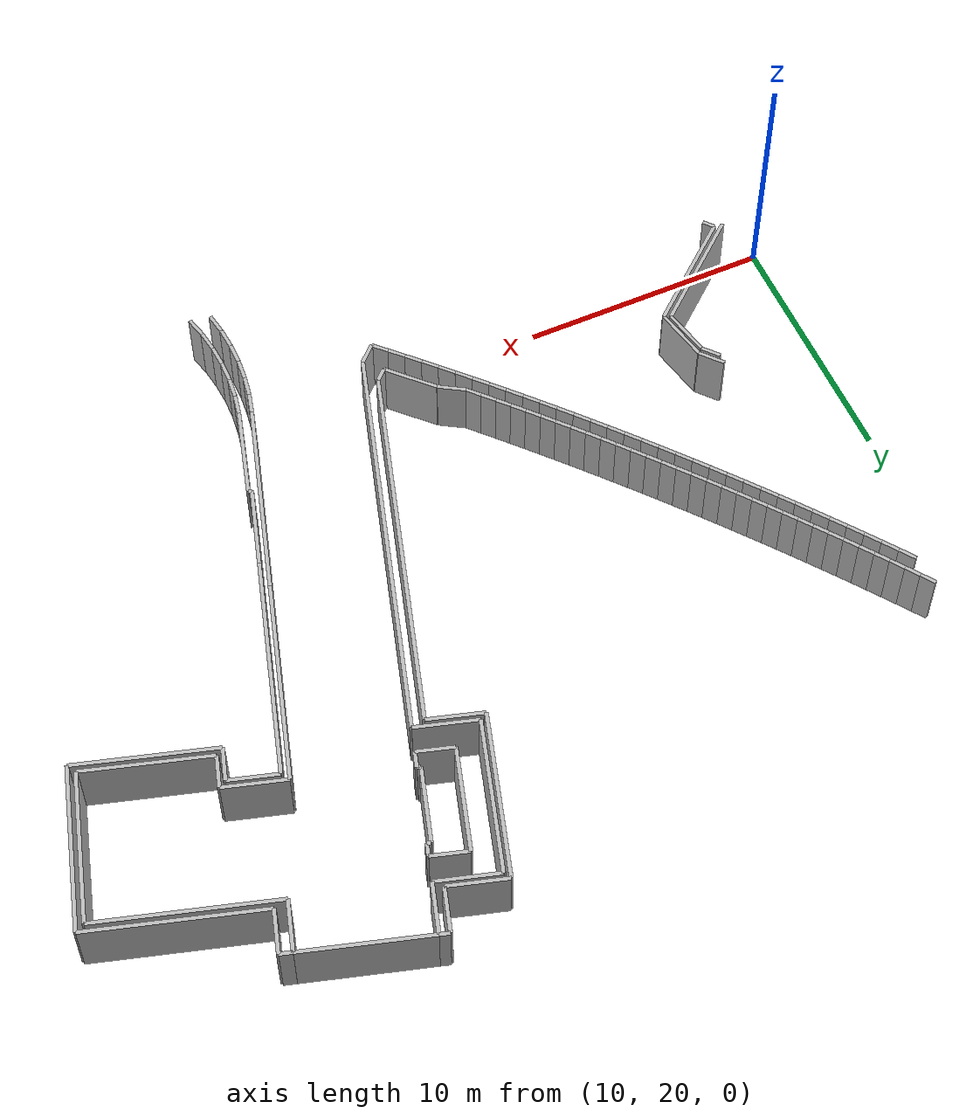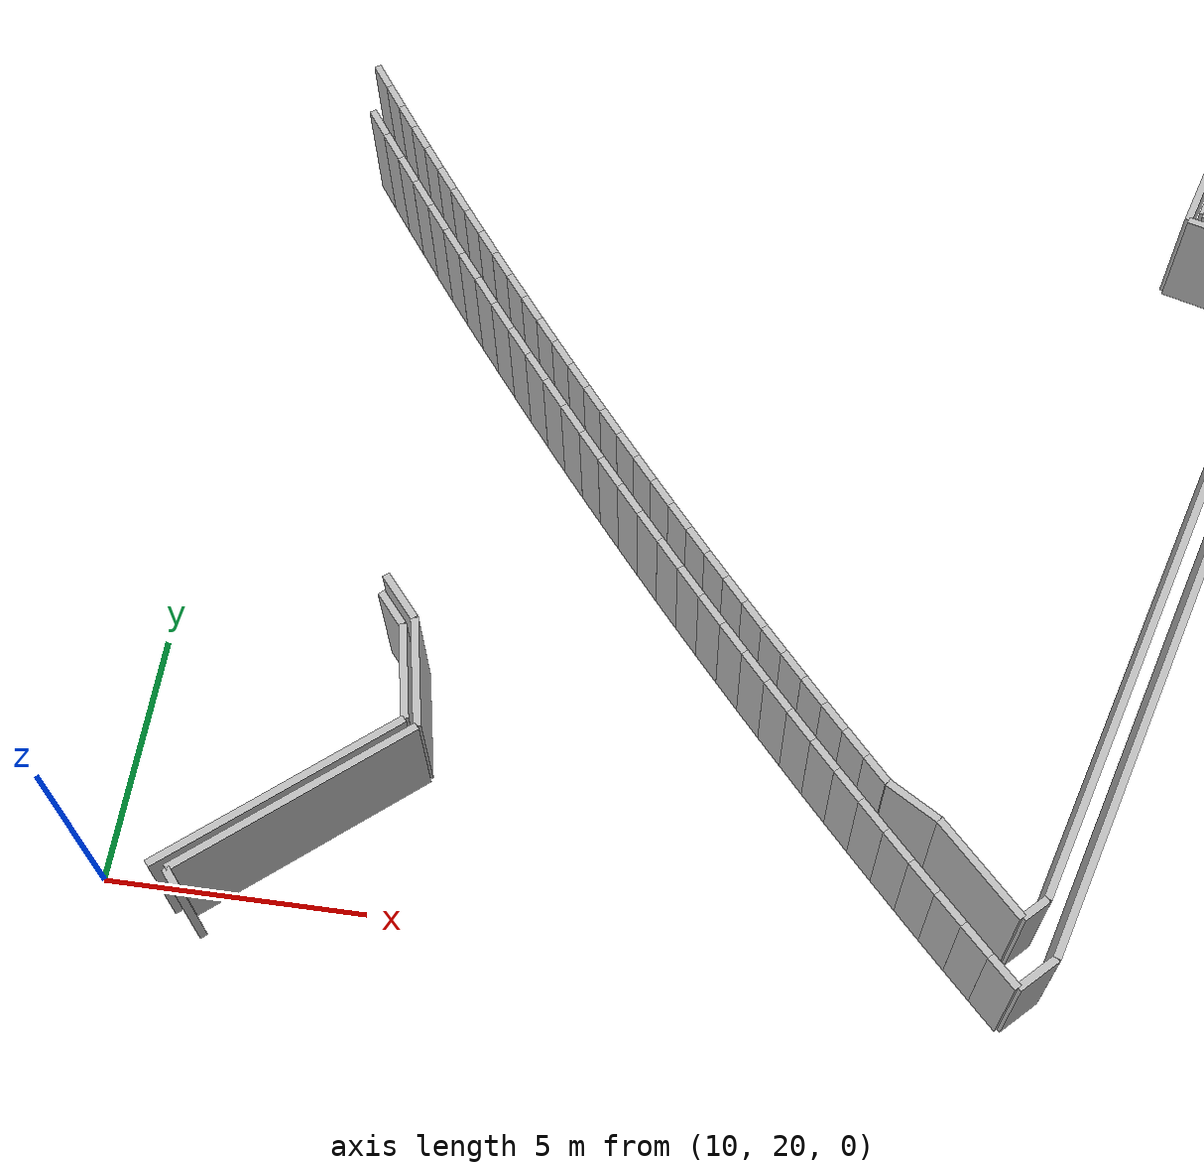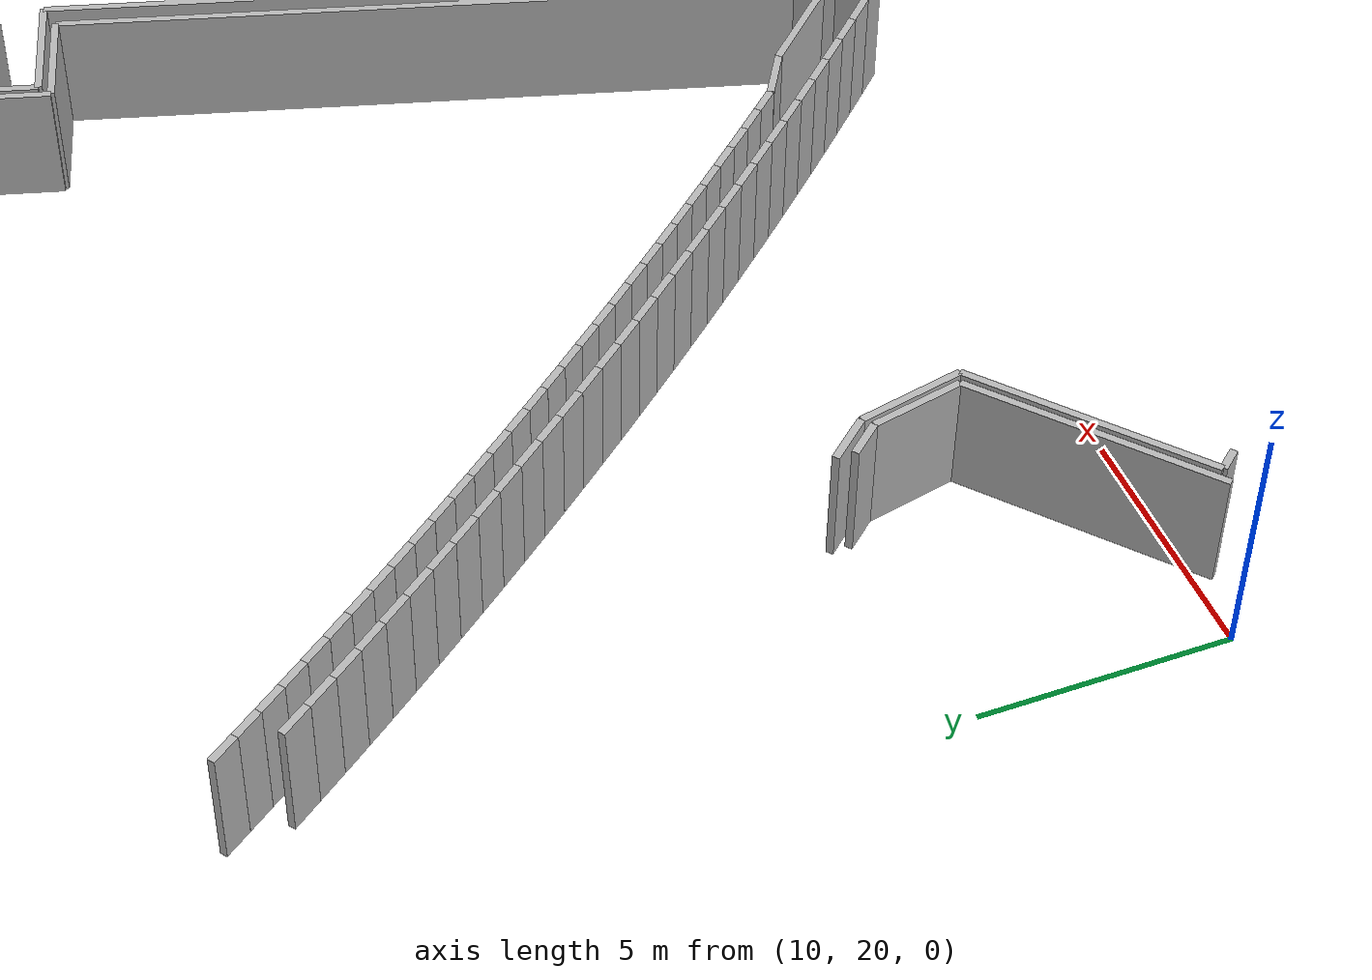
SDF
<sdf version="1.6">
 <model name="sps_0201">
  <static>1</static>
  <allow_auto_disable>0</allow_auto_disable>
  <link name="Wall39">
   <collision name="collision"><geometry><box><size>1.96757 0.15 2.5</size></box></geometry></collision>
   <visual name="visual">
    <geometry><box><size>1.96757 0.15 2.5</size></box></geometry>
    <transparency>0.0</transparency>
   </visual>
   <pose>37.9246 35.3446 1.25 0 -0 2.8548</pose>
  </link>
  <link name="Wall412">
   <collision name="collision"><geometry><box><size>1.07775 0.15 2.5</size></box></geometry></collision>
   <visual name="visual">
    <geometry><box><size>1.07775 0.15 2.5</size></box></geometry>
    <transparency>0.0</transparency>
   </visual>
   <pose>14.8383 25.4288 1.25 0 0 -0.857502</pose>
  </link>
  <link name="Wall417">
   <collision name="collision"><geometry><box><size>2.2506 0.15 2.5</size></box></geometry></collision>
   <visual name="visual">
    <geometry><box><size>2.2506 0.15 2.5</size></box></geometry>
    <transparency>0.0</transparency>
   </visual>
   <pose>25.9873 21.5341 1.25 0 -0 2.34037</pose>
  </link>
  <link name="Wall421">
   <collision name="collision"><geometry><box><size>0.887482 0.15 2.5</size></box></geometry></collision>
   <visual name="visual">
    <geometry><box><size>0.887482 0.15 2.5</size></box></geometry>
    <transparency>0.0</transparency>
   </visual>
   <pose>27.0769 19.7676 1.25 0 0 -2.36777</pose>
  </link>
  <link name="Wall422">
   <collision name="collision"><geometry><box><size>2.23408 0.15 2.5</size></box></geometry></collision>
   <visual name="visual">
    <geometry><box><size>2.23408 0.15 2.5</size></box></geometry>
    <transparency>0.0</transparency>
   </visual>
   <pose>30.4044 35.9931 1.25 0 -0 2.85478</pose>
  </link>
  <link name="Wall424">
   <collision name="collision"><geometry><box><size>2.3349 0.15 2.5</size></box></geometry></collision>
   <visual name="visual">
    <geometry><box><size>2.3349 0.15 2.5</size></box></geometry>
    <transparency>0.0</transparency>
   </visual>
   <pose>32.3158 42.2971 1.25 0 0 -0.286752</pose>
  </link>
  <link name="Wall1154">
   <collision name="collision"><geometry><box><size>0.799993 0.15 2.5</size></box></geometry></collision>
   <visual name="visual">
    <geometry><box><size>0.799993 0.15 2.5</size></box></geometry>
    <transparency>0.0</transparency>
   </visual>
   <pose>14.737 25.1576 1.25 0 0 -0.857536</pose>
  </link>
  <link name="Wall1155">
   <collision name="collision"><geometry><box><size>5.08007 0.15 2.5</size></box></geometry></collision>
   <visual name="visual">
    <geometry><box><size>5.08007 0.15 2.5</size></box></geometry>
    <transparency>0.0</transparency>
   </visual>
   <pose>13.7185 21.2074 1.25 0 -0 0.704525</pose>
  </link>
  <link name="Wall1168">
   <collision name="collision"><geometry><box><size>3.67564 0.15 2.5</size></box></geometry></collision>
   <visual name="visual">
    <geometry><box><size>3.67564 0.15 2.5</size></box></geometry>
    <transparency>0.0</transparency>
   </visual>
   <pose>33.1916 22.1685 1.25 0 -0 1.30074</pose>
  </link>
  <link name="Wall1169">
   <collision name="collision"><geometry><box><size>8.11879 0.15 2.5</size></box></geometry></collision>
   <visual name="visual">
    <geometry><box><size>8.11879 0.15 2.5</size></box></geometry>
    <transparency>0.0</transparency>
   </visual>
   <pose>35.6178 32.0543 1.25 0 0 -1.85759</pose>
  </link>
  <link name="Wall1170">
   <collision name="collision"><geometry><box><size>7.94618 0.15 2.5</size></box></geometry></collision>
   <visual name="visual">
    <geometry><box><size>7.94618 0.15 2.5</size></box></geometry>
    <transparency>0.0</transparency>
   </visual>
   <pose>33.3455 24.3499 1.25 0 0 -1.85759</pose>
  </link>
  <link name="Wall1171">
   <collision name="collision"><geometry><box><size>5.53406 0.15 2.5</size></box></geometry></collision>
   <visual name="visual">
    <geometry><box><size>5.53406 0.15 2.5</size></box></geometry>
    <transparency>0.0</transparency>
   </visual>
   <pose>41.1464 33.0091 1.25 0 -0 2.85477</pose>
  </link>
  <link name="Wall1484">
   <collision name="collision"><geometry><box><size>0.581381 0.15 2.5</size></box></geometry></collision>
   <visual name="visual">
    <geometry><box><size>0.581381 0.15 2.5</size></box></geometry>
    <transparency>0.0</transparency>
   </visual>
   <pose>26.9782 20.9291 1.25 0 0 -2.36763</pose>
  </link>
  <link name="Wall1486">
   <collision name="collision"><geometry><box><size>15.1642 0.15 2.5</size></box></geometry></collision>
   <visual name="visual">
    <geometry><box><size>15.1642 0.15 2.5</size></box></geometry>
    <transparency>0.0</transparency>
   </visual>
   <pose>29.331 28.4047 1.25 0 -0 1.28399</pose>
  </link>
  <link name="Wall1488">
   <collision name="collision"><geometry><box><size>1.32867 0.15 2.5</size></box></geometry></collision>
   <visual name="visual">
    <geometry><box><size>1.32867 0.15 2.5</size></box></geometry>
    <transparency>0.0</transparency>
   </visual>
   <pose>38.6804 34.4291 1.25 0 -0 1.28405</pose>
  </link>
  <link name="Wall1772">
   <collision name="collision"><geometry><box><size>1.93117 0.15 2.5</size></box></geometry></collision>
   <visual name="visual">
    <geometry><box><size>1.93117 0.15 2.5</size></box></geometry>
    <transparency>0.0</transparency>
   </visual>
   <pose>15.2003 23.9108 1.25 0 0 -1.36046</pose>
  </link>
  <link name="Wall1782">
   <collision name="collision"><geometry><box><size>6.58713 0.15 2.5</size></box></geometry></collision>
   <visual name="visual">
    <geometry><box><size>6.58713 0.15 2.5</size></box></geometry>
    <transparency>0.0</transparency>
   </visual>
   <pose>30.2645 39.4682 1.25 0 -0 1.28405</pose>
  </link>
  <link name="Wall1783">
   <collision name="collision"><geometry><box><size>1.76891 0.15 2.5</size></box></geometry></collision>
   <visual name="visual">
    <geometry><box><size>1.76891 0.15 2.5</size></box></geometry>
    <transparency>0.0</transparency>
   </visual>
   <pose>33.6859 42.8152 1.25 0 -0 1.28387</pose>
  </link>
  <link name="Wall1784">
   <collision name="collision"><geometry><box><size>0.397031 0.15 2.5</size></box></geometry></collision>
   <visual name="visual">
    <geometry><box><size>0.397031 0.15 2.5</size></box></geometry>
    <transparency>0.0</transparency>
   </visual>
   <pose>34.1266 43.6073 1.25 0 0 -0.286936</pose>
  </link>
  <link name="Wall2105">
   <collision name="collision"><geometry><box><size>0.502067 0.15 2.5</size></box></geometry></collision>
   <visual name="visual">
    <geometry><box><size>0.502067 0.15 2.5</size></box></geometry>
    <transparency>0.0</transparency>
   </visual>
   <pose>11.9442 19.3697 1.25 0 0 -0.874486</pose>
  </link>
  <link name="Wall2106">
   <collision name="collision"><geometry><box><size>2.21768 0.15 2.5</size></box></geometry></collision>
   <visual name="visual">
    <geometry><box><size>2.21768 0.15 2.5</size></box></geometry>
    <transparency>0.0</transparency>
   </visual>
   <pose>15.4224 23.9369 1.25 0 0 -1.36049</pose>
  </link>
  <link name="Wall2114">
   <collision name="collision"><geometry><box><size>1.13538 0.15 2.5</size></box></geometry></collision>
   <visual name="visual">
    <geometry><box><size>1.13538 0.15 2.5</size></box></geometry>
    <transparency>0.0</transparency>
   </visual>
   <pose>24.719 22.637 1.25 0 -0 2.59575</pose>
  </link>
  <link name="Wall2121">
   <collision name="collision"><geometry><box><size>0.132901 0.15 2.5</size></box></geometry></collision>
   <visual name="visual">
    <geometry><box><size>0.132901 0.15 2.5</size></box></geometry>
    <transparency>0.0</transparency>
   </visual>
   <pose>33.6157 23.9465 1.25 0 -0 3.039</pose>
  </link>
  <link name="Wall2122">
   <collision name="collision"><geometry><box><size>3.26043 0.15 2.5</size></box></geometry></collision>
   <visual name="visual">
    <geometry><box><size>3.26043 0.15 2.5</size></box></geometry>
    <transparency>0.0</transparency>
   </visual>
   <pose>34.0095 25.5173 1.25 0 -0 1.2848</pose>
  </link>
  <link name="Wall2123">
   <collision name="collision"><geometry><box><size>8.87608 0.15 2.5</size></box></geometry></collision>
   <visual name="visual">
    <geometry><box><size>8.87608 0.15 2.5</size></box></geometry>
    <transparency>0.0</transparency>
   </visual>
   <pose>35.7215 31.3391 1.25 0 -0 1.2848</pose>
  </link>
  <link name="Wall2128">
   <collision name="collision"><geometry><box><size>6.79757 0.15 2.5</size></box></geometry></collision>
   <visual name="visual">
    <geometry><box><size>6.79757 0.15 2.5</size></box></geometry>
    <transparency>0.0</transparency>
   </visual>
   <pose>42.3707 39.3935 1.25 0 0 -0.286779</pose>
  </link>
  <link name="Wall2485">
   <collision name="collision"><geometry><box><size>5.21017 0.15 2.5</size></box></geometry></collision>
   <visual name="visual">
    <geometry><box><size>5.21017 0.15 2.5</size></box></geometry>
    <transparency>0.0</transparency>
   </visual>
   <pose>13.4171 21.2792 1.25 0 -0 0.704563</pose>
  </link>
  <link name="Wall2503">
   <collision name="collision"><geometry><box><size>4.13837 0.15 2.5</size></box></geometry></collision>
   <visual name="visual">
    <geometry><box><size>4.13837 0.15 2.5</size></box></geometry>
    <transparency>0.0</transparency>
   </visual>
   <pose>31.4722 39.1296 1.25 0 0 -1.85757</pose>
  </link>
  <link name="Wall2504">
   <collision name="collision"><geometry><box><size>1.47778 0.15 2.5</size></box></geometry></collision>
   <visual name="visual">
    <geometry><box><size>1.47778 0.15 2.5</size></box></geometry>
    <transparency>0.0</transparency>
   </visual>
   <pose>31.5956 36.9359 1.25 0 0 -0.286793</pose>
  </link>
  <link name="Wall2509">
   <collision name="collision"><geometry><box><size>1.70988 0.15 2.5</size></box></geometry></collision>
   <visual name="visual">
    <geometry><box><size>1.70988 0.15 2.5</size></box></geometry>
    <transparency>0.0</transparency>
   </visual>
   <pose>39.3526 41.1749 1.25 0 0 -1.85764</pose>
  </link>
  <link name="Wall2510">
   <collision name="collision"><geometry><box><size>0.502075 0.15 2.5</size></box></geometry></collision>
   <visual name="visual">
    <geometry><box><size>0.502075 0.15 2.5</size></box></geometry>
    <transparency>0.0</transparency>
   </visual>
   <pose>39.3537 42.0659 1.25 0 0 -0.286799</pose>
  </link>
  <link name="Wall2512">
   <collision name="collision"><geometry><box><size>6.47006 0.15 2.5</size></box></geometry></collision>
   <visual name="visual">
    <geometry><box><size>6.47006 0.15 2.5</size></box></geometry>
    <transparency>0.0</transparency>
   </visual>
   <pose>44.7155 35.3292 1.25 0 0 -1.85758</pose>
  </link>
  <link name="Wall12767">
   <collision name="collision"><geometry><box><size>0.712434 0.15 2.5</size></box></geometry></collision>
   <visual name="visual">
    <geometry><box><size>0.712434 0.15 2.5</size></box></geometry>
    <transparency>0.0</transparency>
   </visual>
   <pose>12.2337 36.5301 1.25 0 0 -0.944482</pose>
  </link>
  <link name="Wall12768">
   <collision name="collision"><geometry><box><size>0.712313 0.15 2.5</size></box></geometry></collision>
   <visual name="visual">
    <geometry><box><size>0.712313 0.15 2.5</size></box></geometry>
    <transparency>0.0</transparency>
   </visual>
   <pose>12.6525 35.9539 1.25 0 0 -0.939909</pose>
  </link>
  <link name="Wall12769">
   <collision name="collision"><geometry><box><size>0.712457 0.15 2.5</size></box></geometry></collision>
   <visual name="visual">
    <geometry><box><size>0.712457 0.15 2.5</size></box></geometry>
    <transparency>0.0</transparency>
   </visual>
   <pose>13.0743 35.3798 1.25 0 0 -0.934423</pose>
  </link>
  <link name="Wall12770">
   <collision name="collision"><geometry><box><size>0.712258 0.15 2.5</size></box></geometry></collision>
   <visual name="visual">
    <geometry><box><size>0.712258 0.15 2.5</size></box></geometry>
    <transparency>0.0</transparency>
   </visual>
   <pose>13.499 34.8079 1.25 0 0 -0.929626</pose>
  </link>
  <link name="Wall12771">
   <collision name="collision"><geometry><box><size>0.712295 0.15 2.5</size></box></geometry></collision>
   <visual name="visual">
    <geometry><box><size>0.712295 0.15 2.5</size></box></geometry>
    <transparency>0.0</transparency>
   </visual>
   <pose>13.9266 34.2382 1.25 0 0 -0.924416</pose>
  </link>
  <link name="Wall12772">
   <collision name="collision"><geometry><box><size>0.71235 0.15 2.5</size></box></geometry></collision>
   <visual name="visual">
    <geometry><box><size>0.71235 0.15 2.5</size></box></geometry>
    <transparency>0.0</transparency>
   </visual>
   <pose>14.357 33.6706 1.25 0 0 -0.919635</pose>
  </link>
  <link name="Wall12773">
   <collision name="collision"><geometry><box><size>0.712205 0.15 2.5</size></box></geometry></collision>
   <visual name="visual">
    <geometry><box><size>0.712205 0.15 2.5</size></box></geometry>
    <transparency>0.0</transparency>
   </visual>
   <pose>14.7902 33.1052 1.25 0 0 -0.914406</pose>
  </link>
  <link name="Wall12774">
   <collision name="collision"><geometry><box><size>0.712406 0.15 2.5</size></box></geometry></collision>
   <visual name="visual">
    <geometry><box><size>0.712406 0.15 2.5</size></box></geometry>
    <transparency>0.0</transparency>
   </visual>
   <pose>15.2262 32.542 1.25 0 0 -0.909423</pose>
  </link>
  <link name="Wall12775">
   <collision name="collision"><geometry><box><size>0.712474 0.15 2.5</size></box></geometry></collision>
   <visual name="visual">
    <geometry><box><size>0.712474 0.15 2.5</size></box></geometry>
    <transparency>0.0</transparency>
   </visual>
   <pose>15.6652 31.9808 1.25 0 0 -0.904712</pose>
  </link>
  <link name="Wall12776">
   <collision name="collision"><geometry><box><size>0.712309 0.15 2.5</size></box></geometry></collision>
   <visual name="visual">
    <geometry><box><size>0.712309 0.15 2.5</size></box></geometry>
    <transparency>0.0</transparency>
   </visual>
   <pose>16.1068 31.4218 1.25 0 0 -0.899615</pose>
  </link>
  <link name="Wall12777">
   <collision name="collision"><geometry><box><size>0.712458 0.15 2.5</size></box></geometry></collision>
   <visual name="visual">
    <geometry><box><size>0.712458 0.15 2.5</size></box></geometry>
    <transparency>0.0</transparency>
   </visual>
   <pose>16.5513 30.8651 1.25 0 0 -0.89441</pose>
  </link>
  <link name="Wall12778">
   <collision name="collision"><geometry><box><size>0.712253 0.15 2.5</size></box></geometry></collision>
   <visual name="visual">
    <geometry><box><size>0.712253 0.15 2.5</size></box></geometry>
    <transparency>0.0</transparency>
   </visual>
   <pose>16.9986 30.3107 1.25 0 0 -0.889444</pose>
  </link>
  <link name="Wall12779">
   <collision name="collision"><geometry><box><size>0.712311 0.15 2.5</size></box></geometry></collision>
   <visual name="visual">
    <geometry><box><size>0.712311 0.15 2.5</size></box></geometry>
    <transparency>0.0</transparency>
   </visual>
   <pose>17.4484 29.7585 1.25 0 0 -0.884868</pose>
  </link>
  <link name="Wall12780">
   <collision name="collision"><geometry><box><size>0.712365 0.15 2.5</size></box></geometry></collision>
   <visual name="visual">
    <geometry><box><size>0.712365 0.15 2.5</size></box></geometry>
    <transparency>0.0</transparency>
   </visual>
   <pose>17.9011 29.2085 1.25 0 0 -0.879382</pose>
  </link>
  <link name="Wall12781">
   <collision name="collision"><geometry><box><size>0.712362 0.15 2.5</size></box></geometry></collision>
   <visual name="visual">
    <geometry><box><size>0.712362 0.15 2.5</size></box></geometry>
    <transparency>0.0</transparency>
   </visual>
   <pose>18.3567 28.6608 1.25 0 0 -0.874698</pose>
  </link>
  <link name="Wall12782">
   <collision name="collision"><geometry><box><size>0.712299 0.15 2.5</size></box></geometry></collision>
   <visual name="visual">
    <geometry><box><size>0.712299 0.15 2.5</size></box></geometry>
    <transparency>0.0</transparency>
   </visual>
   <pose>18.8148 28.1154 1.25 0 0 -0.869475</pose>
  </link>
  <link name="Wall12783">
   <collision name="collision"><geometry><box><size>0.71244 0.15 2.5</size></box></geometry></collision>
   <visual name="visual">
    <geometry><box><size>0.71244 0.15 2.5</size></box></geometry>
    <transparency>0.0</transparency>
   </visual>
   <pose>19.2758 27.5723 1.25 0 0 -0.864475</pose>
  </link>
  <link name="Wall12784">
   <collision name="collision"><geometry><box><size>0.712481 0.15 2.5</size></box></geometry></collision>
   <visual name="visual">
    <geometry><box><size>0.712481 0.15 2.5</size></box></geometry>
    <transparency>0.0</transparency>
   </visual>
   <pose>19.7396 27.0314 1.25 0 0 -0.859671</pose>
  </link>
  <link name="Wall12785">
   <collision name="collision"><geometry><box><size>0.712175 0.15 2.5</size></box></geometry></collision>
   <visual name="visual">
    <geometry><box><size>0.712175 0.15 2.5</size></box></geometry>
    <transparency>0.0</transparency>
   </visual>
   <pose>20.2059 26.4929 1.25 0 0 -0.854538</pose>
  </link>
  <link name="Wall12786">
   <collision name="collision"><geometry><box><size>0.712415 0.15 2.5</size></box></geometry></collision>
   <visual name="visual">
    <geometry><box><size>0.712415 0.15 2.5</size></box></geometry>
    <transparency>0.0</transparency>
   </visual>
   <pose>20.6749 25.9568 1.25 0 0 -0.849597</pose>
  </link>
  <link name="Wall12787">
   <collision name="collision"><geometry><box><size>0.712324 0.15 2.5</size></box></geometry></collision>
   <visual name="visual">
    <geometry><box><size>0.712324 0.15 2.5</size></box></geometry>
    <transparency>0.0</transparency>
   </visual>
   <pose>21.1466 25.423 1.25 0 0 -0.844567</pose>
  </link>
  <link name="Wall12788">
   <collision name="collision"><geometry><box><size>0.712377 0.15 2.5</size></box></geometry></collision>
   <visual name="visual">
    <geometry><box><size>0.712377 0.15 2.5</size></box></geometry>
    <transparency>0.0</transparency>
   </visual>
   <pose>21.621 24.8916 1.25 0 0 -0.839465</pose>
  </link>
  <link name="Wall12789">
   <collision name="collision"><geometry><box><size>0.712199 0.15 2.5</size></box></geometry></collision>
   <visual name="visual">
    <geometry><box><size>0.712199 0.15 2.5</size></box></geometry>
    <transparency>0.0</transparency>
   </visual>
   <pose>22.098 24.3626 1.25 0 0 -0.834624</pose>
  </link>
  <link name="Wall12790">
   <collision name="collision"><geometry><box><size>0.71233 0.15 2.5</size></box></geometry></collision>
   <visual name="visual">
    <geometry><box><size>0.71233 0.15 2.5</size></box></geometry>
    <transparency>0.0</transparency>
   </visual>
   <pose>22.5776 23.836 1.25 0 0 -0.82946</pose>
  </link>
  <link name="Wall12791">
   <collision name="collision"><geometry><box><size>0.712314 0.15 2.5</size></box></geometry></collision>
   <visual name="visual">
    <geometry><box><size>0.712314 0.15 2.5</size></box></geometry>
    <transparency>0.0</transparency>
   </visual>
   <pose>23.0599 23.3118 1.25 0 0 -0.824549</pose>
  </link>
  <link name="Wall12792">
   <collision name="collision"><geometry><box><size>0.712482 0.15 2.5</size></box></geometry></collision>
   <visual name="visual">
    <geometry><box><size>0.712482 0.15 2.5</size></box></geometry>
    <transparency>0.0</transparency>
   </visual>
   <pose>23.5449 22.79 1.25 0 0 -0.819387</pose>
  </link>
  <link name="Wall12793">
   <collision name="collision"><geometry><box><size>0.712506 0.15 2.5</size></box></geometry></collision>
   <visual name="visual">
    <geometry><box><size>0.712506 0.15 2.5</size></box></geometry>
    <transparency>0.0</transparency>
   </visual>
   <pose>24.0325 22.2705 1.25 0 0 -0.81472</pose>
  </link>
  <link name="Wall12794">
   <collision name="collision"><geometry><box><size>0.712276 0.15 2.5</size></box></geometry></collision>
   <visual name="visual">
    <geometry><box><size>0.712276 0.15 2.5</size></box></geometry>
    <transparency>0.0</transparency>
   </visual>
   <pose>24.5226 21.7535 1.25 0 0 -0.809456</pose>
  </link>
  <link name="Wall12795">
   <collision name="collision"><geometry><box><size>0.712418 0.15 2.5</size></box></geometry></collision>
   <visual name="visual">
    <geometry><box><size>0.712418 0.15 2.5</size></box></geometry>
    <transparency>0.0</transparency>
   </visual>
   <pose>25.0153 21.239 1.25 0 0 -0.804664</pose>
  </link>
  <link name="Wall12796">
   <collision name="collision"><geometry><box><size>0.712311 0.15 2.5</size></box></geometry></collision>
   <visual name="visual">
    <geometry><box><size>0.712311 0.15 2.5</size></box></geometry>
    <transparency>0.0</transparency>
   </visual>
   <pose>25.5106 20.727 1.25 0 0 -0.799274</pose>
  </link>
  <link name="Wall12797">
   <collision name="collision"><geometry><box><size>0.71236 0.15 2.5</size></box></geometry></collision>
   <visual name="visual">
    <geometry><box><size>0.71236 0.15 2.5</size></box></geometry>
    <transparency>0.0</transparency>
   </visual>
   <pose>26.0084 20.2175 1.25 0 0 -0.794789</pose>
  </link>
  <link name="Wall12798">
   <collision name="collision"><geometry><box><size>0.712378 0.15 2.5</size></box></geometry></collision>
   <visual name="visual">
    <geometry><box><size>0.712378 0.15 2.5</size></box></geometry>
    <transparency>0.0</transparency>
   </visual>
   <pose>26.5087 19.7104 1.25 0 0 -0.789518</pose>
  </link>
  <link name="Wall12801">
   <collision name="collision"><geometry><box><size>0.836321 0.15 2.5</size></box></geometry></collision>
   <visual name="visual">
    <geometry><box><size>0.836321 0.15 2.5</size></box></geometry>
    <transparency>0.0</transparency>
   </visual>
   <pose>31.9723 15.9876 1.25 0 -0 1.74412</pose>
  </link>
  <link name="Wall12802">
   <collision name="collision"><geometry><box><size>0.836174 0.15 2.5</size></box></geometry></collision>
   <visual name="visual">
    <geometry><box><size>0.836174 0.15 2.5</size></box></geometry>
    <transparency>0.0</transparency>
   </visual>
   <pose>31.8628 16.8159 1.25 0 -0 1.66033</pose>
  </link>
  <link name="Wall12803">
   <collision name="collision"><geometry><box><size>0.836381 0.15 2.5</size></box></geometry></collision>
   <visual name="visual">
    <geometry><box><size>0.836381 0.15 2.5</size></box></geometry>
    <transparency>0.0</transparency>
   </visual>
   <pose>31.8229 17.6505 1.25 0 -0 1.577</pose>
  </link>
  <link name="Wall12804">
   <collision name="collision"><geometry><box><size>0.83613 0.15 2.5</size></box></geometry></collision>
   <visual name="visual">
    <geometry><box><size>0.83613 0.15 2.5</size></box></geometry>
    <transparency>0.0</transparency>
   </visual>
   <pose>31.8527 18.4855 1.25 0 -0 1.49327</pose>
  </link>
  <link name="Wall12805">
   <collision name="collision"><geometry><box><size>0.83619 0.15 2.5</size></box></geometry></collision>
   <visual name="visual">
    <geometry><box><size>0.83619 0.15 2.5</size></box></geometry>
    <transparency>0.0</transparency>
   </visual>
   <pose>31.952 19.315 1.25 0 -0 1.40981</pose>
  </link>
  <link name="Wall12806">
   <collision name="collision"><geometry><box><size>0.836307 0.15 2.5</size></box></geometry></collision>
   <visual name="visual">
    <geometry><box><size>0.836307 0.15 2.5</size></box></geometry>
    <transparency>0.0</transparency>
   </visual>
   <pose>32.1204 20.1334 1.25 0 -0 1.32614</pose>
  </link>
  <link name="Wall18958">
   <collision name="collision"><geometry><box><size>0.630197 0.15 2.5</size></box></geometry></collision>
   <visual name="visual">
    <geometry><box><size>0.630197 0.15 2.5</size></box></geometry>
    <transparency>0.0</transparency>
   </visual>
   <pose>12.063 37.7975 1.25 0 0 -0.952731</pose>
  </link>
  <link name="Wall18959">
   <collision name="collision"><geometry><box><size>0.630382 0.15 2.5</size></box></geometry></collision>
   <visual name="visual">
    <geometry><box><size>0.630382 0.15 2.5</size></box></geometry>
    <transparency>0.0</transparency>
   </visual>
   <pose>12.4295 37.2847 1.25 0 0 -0.947823</pose>
  </link>
  <link name="Wall18960">
   <collision name="collision"><geometry><box><size>0.630323 0.15 2.5</size></box></geometry></collision>
   <visual name="visual">
    <geometry><box><size>0.630323 0.15 2.5</size></box></geometry>
    <transparency>0.0</transparency>
   </visual>
   <pose>12.7983 36.7735 1.25 0 0 -0.943815</pose>
  </link>
  <link name="Wall18961">
   <collision name="collision"><geometry><box><size>0.630536 0.15 2.5</size></box></geometry></collision>
   <visual name="visual">
    <geometry><box><size>0.630536 0.15 2.5</size></box></geometry>
    <transparency>0.0</transparency>
   </visual>
   <pose>13.1695 36.2639 1.25 0 0 -0.938911</pose>
  </link>
  <link name="Wall18962">
   <collision name="collision"><geometry><box><size>0.630414 0.15 2.5</size></box></geometry></collision>
   <visual name="visual">
    <geometry><box><size>0.630414 0.15 2.5</size></box></geometry>
    <transparency>0.0</transparency>
   </visual>
   <pose>13.5429 35.7559 1.25 0 0 -0.934925</pose>
  </link>
  <link name="Wall18963">
   <collision name="collision"><geometry><box><size>0.630361 0.15 2.5</size></box></geometry></collision>
   <visual name="visual">
    <geometry><box><size>0.630361 0.15 2.5</size></box></geometry>
    <transparency>0.0</transparency>
   </visual>
   <pose>13.9184 35.2496 1.25 0 0 -0.930161</pose>
  </link>
  <link name="Wall18964">
   <collision name="collision"><geometry><box><size>0.630335 0.15 2.5</size></box></geometry></collision>
   <visual name="visual">
    <geometry><box><size>0.630335 0.15 2.5</size></box></geometry>
    <transparency>0.0</transparency>
   </visual>
   <pose>14.2963 34.745 1.25 0 0 -0.926017</pose>
  </link>
  <link name="Wall18965">
   <collision name="collision"><geometry><box><size>0.630321 0.15 2.5</size></box></geometry></collision>
   <visual name="visual">
    <geometry><box><size>0.630321 0.15 2.5</size></box></geometry>
    <transparency>0.0</transparency>
   </visual>
   <pose>14.6763 34.2421 1.25 0 0 -0.921388</pose>
  </link>
  <link name="Wall18966">
   <collision name="collision"><geometry><box><size>0.63054 0.15 2.5</size></box></geometry></collision>
   <visual name="visual">
    <geometry><box><size>0.63054 0.15 2.5</size></box></geometry>
    <transparency>0.0</transparency>
   </visual>
   <pose>15.0586 33.7409 1.25 0 0 -0.916783</pose>
  </link>
  <link name="Wall18967">
   <collision name="collision"><geometry><box><size>0.630463 0.15 2.5</size></box></geometry></collision>
   <visual name="visual">
    <geometry><box><size>0.630463 0.15 2.5</size></box></geometry>
    <transparency>0.0</transparency>
   </visual>
   <pose>15.4433 33.2413 1.25 0 0 -0.912657</pose>
  </link>
  <link name="Wall18968">
   <collision name="collision"><geometry><box><size>0.630375 0.15 2.5</size></box></geometry></collision>
   <visual name="visual">
    <geometry><box><size>0.630375 0.15 2.5</size></box></geometry>
    <transparency>0.0</transparency>
   </visual>
   <pose>15.8299 32.7434 1.25 0 0 -0.908259</pose>
  </link>
  <link name="Wall18969">
   <collision name="collision"><geometry><box><size>0.630328 0.15 2.5</size></box></geometry></collision>
   <visual name="visual">
    <geometry><box><size>0.630328 0.15 2.5</size></box></geometry>
    <transparency>0.0</transparency>
   </visual>
   <pose>16.2188 32.2473 1.25 0 0 -0.903647</pose>
  </link>
  <link name="Wall18970">
   <collision name="collision"><geometry><box><size>0.630417 0.15 2.5</size></box></geometry></collision>
   <visual name="visual">
    <geometry><box><size>0.630417 0.15 2.5</size></box></geometry>
    <transparency>0.0</transparency>
   </visual>
   <pose>16.61 31.753 1.25 0 0 -0.898943</pose>
  </link>
  <link name="Wall18971">
   <collision name="collision"><geometry><box><size>0.630434 0.15 2.5</size></box></geometry></collision>
   <visual name="visual">
    <geometry><box><size>0.630434 0.15 2.5</size></box></geometry>
    <transparency>0.0</transparency>
   </visual>
   <pose>17.0034 31.2604 1.25 0 0 -0.894876</pose>
  </link>
  <link name="Wall18972">
   <collision name="collision"><geometry><box><size>0.630386 0.15 2.5</size></box></geometry></collision>
   <visual name="visual">
    <geometry><box><size>0.630386 0.15 2.5</size></box></geometry>
    <transparency>0.0</transparency>
   </visual>
   <pose>17.3989 30.7695 1.25 0 0 -0.89034</pose>
  </link>
  <link name="Wall18973">
   <collision name="collision"><geometry><box><size>0.630515 0.15 2.5</size></box></geometry></collision>
   <visual name="visual">
    <geometry><box><size>0.630515 0.15 2.5</size></box></geometry>
    <transparency>0.0</transparency>
   </visual>
   <pose>17.7967 30.2804 1.25 0 0 -0.885639</pose>
  </link>
  <link name="Wall18974">
   <collision name="collision"><geometry><box><size>0.630378 0.15 2.5</size></box></geometry></collision>
   <visual name="visual">
    <geometry><box><size>0.630378 0.15 2.5</size></box></geometry>
    <transparency>0.0</transparency>
   </visual>
   <pose>18.1967 29.7931 1.25 0 0 -0.881327</pose>
  </link>
  <link name="Wall18975">
   <collision name="collision"><geometry><box><size>0.630252 0.15 2.5</size></box></geometry></collision>
   <visual name="visual">
    <geometry><box><size>0.630252 0.15 2.5</size></box></geometry>
    <transparency>0.0</transparency>
   </visual>
   <pose>18.5987 29.3076 1.25 0 0 -0.877013</pose>
  </link>
  <link name="Wall18976">
   <collision name="collision"><geometry><box><size>0.630467 0.15 2.5</size></box></geometry></collision>
   <visual name="visual">
    <geometry><box><size>0.630467 0.15 2.5</size></box></geometry>
    <transparency>0.0</transparency>
   </visual>
   <pose>19.003 28.8239 1.25 0 0 -0.872377</pose>
  </link>
  <link name="Wall18977">
   <collision name="collision"><geometry><box><size>0.630506 0.15 2.5</size></box></geometry></collision>
   <visual name="visual">
    <geometry><box><size>0.630506 0.15 2.5</size></box></geometry>
    <transparency>0.0</transparency>
   </visual>
   <pose>19.4094 28.3419 1.25 0 0 -0.868249</pose>
  </link>
  <link name="Wall18978">
   <collision name="collision"><geometry><box><size>0.630256 0.15 2.5</size></box></geometry></collision>
   <visual name="visual">
    <geometry><box><size>0.630256 0.15 2.5</size></box></geometry>
    <transparency>0.0</transparency>
   </visual>
   <pose>19.8179 27.8618 1.25 0 0 -0.863336</pose>
  </link>
  <link name="Wall18979">
   <collision name="collision"><geometry><box><size>0.630463 0.15 2.5</size></box></geometry></collision>
   <visual name="visual">
    <geometry><box><size>0.630463 0.15 2.5</size></box></geometry>
    <transparency>0.0</transparency>
   </visual>
   <pose>20.2284 27.3835 1.25 0 0 -0.859534</pose>
  </link>
  <link name="Wall18980">
   <collision name="collision"><geometry><box><size>0.630419 0.15 2.5</size></box></geometry></collision>
   <visual name="visual">
    <geometry><box><size>0.630419 0.15 2.5</size></box></geometry>
    <transparency>0.0</transparency>
   </visual>
   <pose>20.6411 26.9069 1.25 0 0 -0.854735</pose>
  </link>
  <link name="Wall18981">
   <collision name="collision"><geometry><box><size>0.630228 0.15 2.5</size></box></geometry></collision>
   <visual name="visual">
    <geometry><box><size>0.630228 0.15 2.5</size></box></geometry>
    <transparency>0.0</transparency>
   </visual>
   <pose>21.056 26.4323 1.25 0 0 -0.850226</pose>
  </link>
  <link name="Wall18982">
   <collision name="collision"><geometry><box><size>0.630313 0.15 2.5</size></box></geometry></collision>
   <visual name="visual">
    <geometry><box><size>0.630313 0.15 2.5</size></box></geometry>
    <transparency>0.0</transparency>
   </visual>
   <pose>21.4729 25.9596 1.25 0 0 -0.845827</pose>
  </link>
  <link name="Wall18983">
   <collision name="collision"><geometry><box><size>0.630492 0.15 2.5</size></box></geometry></collision>
   <visual name="visual">
    <geometry><box><size>0.630492 0.15 2.5</size></box></geometry>
    <transparency>0.0</transparency>
   </visual>
   <pose>21.892 25.4887 1.25 0 0 -0.841284</pose>
  </link>
  <link name="Wall18984">
   <collision name="collision"><geometry><box><size>0.630435 0.15 2.5</size></box></geometry></collision>
   <visual name="visual">
    <geometry><box><size>0.630435 0.15 2.5</size></box></geometry>
    <transparency>0.0</transparency>
   </visual>
   <pose>22.3132 25.0196 1.25 0 0 -0.837039</pose>
  </link>
  <link name="Wall18985">
   <collision name="collision"><geometry><box><size>0.630294 0.15 2.5</size></box></geometry></collision>
   <visual name="visual">
    <geometry><box><size>0.630294 0.15 2.5</size></box></geometry>
    <transparency>0.0</transparency>
   </visual>
   <pose>22.7364 24.5524 1.25 0 0 -0.832525</pose>
  </link>
  <link name="Wall18986">
   <collision name="collision"><geometry><box><size>0.63047 0.15 2.5</size></box></geometry></collision>
   <visual name="visual">
    <geometry><box><size>0.63047 0.15 2.5</size></box></geometry>
    <transparency>0.0</transparency>
   </visual>
   <pose>23.1616 24.0871 1.25 0 0 -0.828058</pose>
  </link>
  <link name="Wall18987">
   <collision name="collision"><geometry><box><size>0.630614 0.15 2.5</size></box></geometry></collision>
   <visual name="visual">
    <geometry><box><size>0.630614 0.15 2.5</size></box></geometry>
    <transparency>0.0</transparency>
   </visual>
   <pose>23.5891 23.6236 1.25 0 0 -0.823528</pose>
  </link>
  <link name="Wall18988">
   <collision name="collision"><geometry><box><size>0.630387 0.15 2.5</size></box></geometry></collision>
   <visual name="visual">
    <geometry><box><size>0.630387 0.15 2.5</size></box></geometry>
    <transparency>0.0</transparency>
   </visual>
   <pose>24.0186 23.162 1.25 0 0 -0.819226</pose>
  </link>
  <link name="Wall18991">
   <collision name="collision"><geometry><box><size>1.47799 0.15 2.5</size></box></geometry></collision>
   <visual name="visual">
    <geometry><box><size>1.47799 0.15 2.5</size></box></geometry>
    <transparency>0.0</transparency>
   </visual>
   <pose>32.7663 40.9052 1.25 0 0 -0.286837</pose>
  </link>
  <link name="Wall18992">
   <collision name="collision"><geometry><box><size>0.499853 0.15 2.5</size></box></geometry></collision>
   <visual name="visual">
    <geometry><box><size>0.499853 0.15 2.5</size></box></geometry>
    <transparency>0.0</transparency>
   </visual>
   <pose>33.4043 40.4564 1.25 0 0 -1.85763</pose>
  </link>
  <link name="Wall18993">
   <collision name="collision"><geometry><box><size>0.149925 0.15 2.5</size></box></geometry></collision>
   <visual name="visual">
    <geometry><box><size>0.149925 0.15 2.5</size></box></geometry>
    <transparency>0.0</transparency>
   </visual>
   <pose>33.2617 40.2379 1.25 0 -0 2.85474</pose>
  </link>
  <link name="Wall18994">
   <collision name="collision"><geometry><box><size>3.00003 0.15 2.5</size></box></geometry></collision>
   <visual name="visual">
    <geometry><box><size>3.00003 0.15 2.5</size></box></geometry>
    <transparency>0.0</transparency>
   </visual>
   <pose>32.7654 38.8204 1.25 0 0 -1.85765</pose>
  </link>
  <link name="Wall18995">
   <collision name="collision"><geometry><box><size>0.150211 0.15 2.5</size></box></geometry></collision>
   <visual name="visual">
    <geometry><box><size>0.150211 0.15 2.5</size></box></geometry>
    <transparency>0.0</transparency>
   </visual>
   <pose>32.413 37.3604 1.25 0 0 -0.287565</pose>
  </link>
  <link name="Wall18996">
   <collision name="collision"><geometry><box><size>0.643692 0.15 2.5</size></box></geometry></collision>
   <visual name="visual">
    <geometry><box><size>0.643692 0.15 2.5</size></box></geometry>
    <transparency>0.0</transparency>
   </visual>
   <pose>32.394 37.0304 1.25 0 0 -1.85776</pose>
  </link>
  <link name="Wall20980">
   <collision name="collision"><geometry><box><size>0.835653 0.15 2.5</size></box></geometry></collision>
   <visual name="visual">
    <geometry><box><size>0.835653 0.15 2.5</size></box></geometry>
    <transparency>0.0</transparency>
   </visual>
   <pose>32.7497 15.8473 1.25 0 -0 1.8213</pose>
  </link>
  <link name="Wall20981">
   <collision name="collision"><geometry><box><size>0.835634 0.15 2.5</size></box></geometry></collision>
   <visual name="visual">
    <geometry><box><size>0.835634 0.15 2.5</size></box></geometry>
    <transparency>0.0</transparency>
   </visual>
   <pose>32.5784 16.6644 1.25 0 -0 1.73359</pose>
  </link>
  <link name="Wall20982">
   <collision name="collision"><geometry><box><size>0.835509 0.15 2.5</size></box></geometry></collision>
   <visual name="visual">
    <geometry><box><size>0.835509 0.15 2.5</size></box></geometry>
    <transparency>0.0</transparency>
   </visual>
   <pose>32.4795 17.4933 1.25 0 -0 1.6453</pose>
  </link>
  <link name="Wall20983">
   <collision name="collision"><geometry><box><size>0.835521 0.15 2.5</size></box></geometry></collision>
   <visual name="visual">
    <geometry><box><size>0.835521 0.15 2.5</size></box></geometry>
    <transparency>0.0</transparency>
   </visual>
   <pose>32.4539 18.3276 1.25 0 -0 1.55765</pose>
  </link>
  <link name="Wall20984">
   <collision name="collision"><geometry><box><size>0.835653 0.15 2.5</size></box></geometry></collision>
   <visual name="visual">
    <geometry><box><size>0.835653 0.15 2.5</size></box></geometry>
    <transparency>0.0</transparency>
   </visual>
   <pose>32.5017 19.161 1.25 0 -0 1.46939</pose>
  </link>
  <link name="Wall20985">
   <collision name="collision"><geometry><box><size>0.835544 0.15 2.5</size></box></geometry></collision>
   <visual name="visual">
    <geometry><box><size>0.835544 0.15 2.5</size></box></geometry>
    <transparency>0.0</transparency>
   </visual>
   <pose>32.6226 19.987 1.25 0 -0 1.3815</pose>
  </link>
  <link name="Wall27405">
   <collision name="collision"><geometry><box><size>16.3729 0.15 2.5</size></box></geometry></collision>
   <visual name="visual">
    <geometry><box><size>16.3729 0.15 2.5</size></box></geometry>
    <transparency>0.0</transparency>
   </visual>
   <pose>29.71 27.9298 1.25 0 -0 1.284</pose>
  </link>
  <link name="Wall27406">
   <collision name="collision"><geometry><box><size>2.50017 0.15 2.5</size></box></geometry></collision>
   <visual name="visual">
    <geometry><box><size>2.50017 0.15 2.5</size></box></geometry>
    <transparency>0.0</transparency>
   </visual>
   <pose>30.8268 36.1356 1.25 0 -0 2.85474</pose>
  </link>
  <link name="Wall27407">
   <collision name="collision"><geometry><box><size>6.10001 0.15 2.5</size></box></geometry></collision>
   <visual name="visual">
    <geometry><box><size>6.10001 0.15 2.5</size></box></geometry>
    <transparency>0.0</transparency>
   </visual>
   <pose>30.4907 39.4147 1.25 0 -0 1.28399</pose>
  </link>
  <link name="Wall27408">
   <collision name="collision"><geometry><box><size>2.49984 0.15 2.5</size></box></geometry></collision>
   <visual name="visual">
    <geometry><box><size>2.49984 0.15 2.5</size></box></geometry>
    <transparency>0.0</transparency>
   </visual>
   <pose>32.5524 41.9866 1.25 0 0 -0.286745</pose>
  </link>
  <link name="Wall27409">
   <collision name="collision"><geometry><box><size>5.89981 0.15 2.5</size></box></geometry></collision>
   <visual name="visual">
    <geometry><box><size>5.89981 0.15 2.5</size></box></geometry>
    <transparency>0.0</transparency>
   </visual>
   <pose>44.4267 35.4087 1.25 0 0 -1.8576</pose>
  </link>
  <link name="Wall27410">
   <collision name="collision"><geometry><box><size>5.00022 0.15 2.5</size></box></geometry></collision>
   <visual name="visual">
    <geometry><box><size>5.00022 0.15 2.5</size></box></geometry>
    <transparency>0.0</transparency>
   </visual>
   <pose>41.1942 33.2865 1.25 0 -0 2.85482</pose>
  </link>
  <link name="Wall27411">
   <collision name="collision"><geometry><box><size>1.30001 0.15 2.5</size></box></geometry></collision>
   <visual name="visual">
    <geometry><box><size>1.30001 0.15 2.5</size></box></geometry>
    <transparency>0.0</transparency>
   </visual>
   <pose>38.9802 34.6171 1.25 0 -0 1.28376</pose>
  </link>
  <link name="Wall27412">
   <collision name="collision"><geometry><box><size>2.50017 0.15 2.5</size></box></geometry></collision>
   <visual name="visual">
    <geometry><box><size>2.50017 0.15 2.5</size></box></geometry>
    <transparency>0.0</transparency>
   </visual>
   <pose>37.9653 35.5942 1.25 0 -0 2.85474</pose>
  </link>
  <link name="Wall27413">
   <collision name="collision"><geometry><box><size>1.99974 0.15 2.5</size></box></geometry></collision>
   <visual name="visual">
    <geometry><box><size>1.99974 0.15 2.5</size></box></geometry>
    <transparency>0.0</transparency>
   </visual>
   <pose>34.0341 42.5921 1.25 0 -0 1.28394</pose>
  </link>
  <link name="Wall27414">
   <collision name="collision"><geometry><box><size>5 0.15 2.5</size></box></geometry></collision>
   <visual name="visual">
    <geometry><box><size>5 0.15 2.5</size></box></geometry>
    <transparency>0.0</transparency>
   </visual>
   <pose>36.715 42.844 1.25 0 0 -0.286751</pose>
  </link>
  <link name="Wall27415">
   <collision name="collision"><geometry><box><size>2.00009 0.15 2.5</size></box></geometry></collision>
   <visual name="visual">
    <geometry><box><size>2.00009 0.15 2.5</size></box></geometry>
    <transparency>0.0</transparency>
   </visual>
   <pose>38.83 41.1777 1.25 0 0 -1.8576</pose>
  </link>
  <link name="Wall27416">
   <collision name="collision"><geometry><box><size>7.00015 0.15 2.5</size></box></geometry></collision>
   <visual name="visual">
    <geometry><box><size>7.00015 0.15 2.5</size></box></geometry>
    <transparency>0.0</transparency>
   </visual>
   <pose>41.9042 39.2283 1.25 0 0 -0.286826</pose>
  </link>
 </model>
</sdf>
